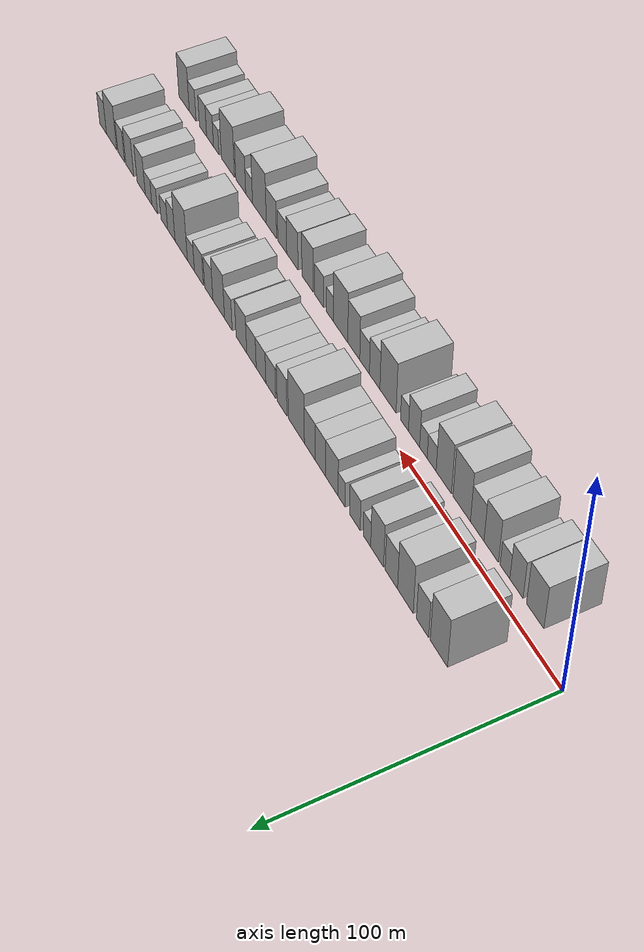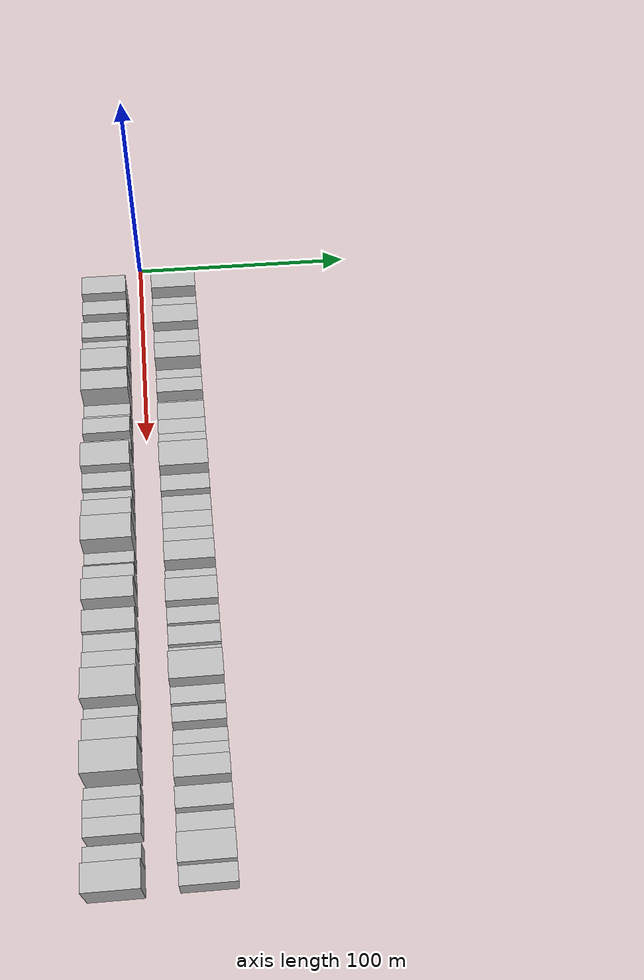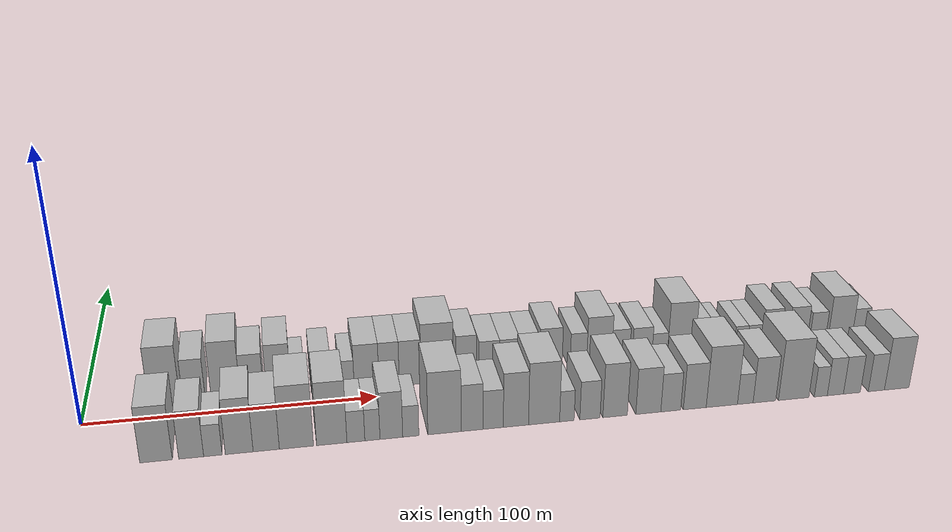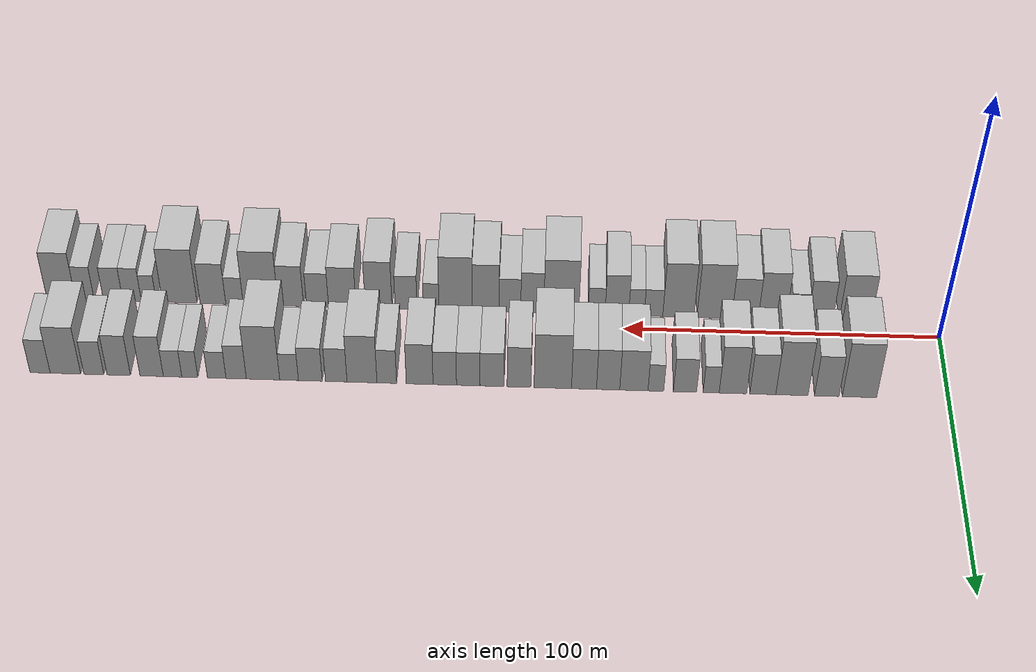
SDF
<sdf version="1.6">
 <world name="default">
  <scene>
   <sky><clouds><speed>12</speed></clouds></sky>
   <ambient>0.4 0.4 0.4 1</ambient>
   <background>0.7 0.7 0.7 1</background>
   <shadows>1</shadows>
  </scene>
  <gravity>0 0 -9.8066</gravity>
  <magnetic_field>6e-06 2.3e-05 -4.2e-05</magnetic_field>
  <physics default="0" name="default_physics" type="ode">
   <ode>
    <solver>
     <type>quick</type>
     <iters>10</iters>
     <sor>1.0</sor>
     <use_dynamic_moi_rescaling>0</use_dynamic_moi_rescaling>
    </solver>
    <constraints>
     <cfm>0</cfm>
     <erp>0.2</erp>
     <contact_max_correcting_vel>100</contact_max_correcting_vel>
     <contact_surface_layer>0.001</contact_surface_layer>
    </constraints>
   </ode>
   <max_step_size>0.004</max_step_size>
   <real_time_factor>1</real_time_factor>
   <real_time_update_rate>250</real_time_update_rate>
  </physics>
  <light name="sun" type="directional">
   <pose>0 0 10 0 0 0</pose>
   <diffuse>0.8 0.8 0.8 1</diffuse>
   <specular>0.2 0.2 0.2 1</specular>
   <attenuation>
    <range>1000</range>
    <constant>0.9</constant>
    <linear>0.01</linear>
    <quadratic>0.001</quadratic>
   </attenuation>
   <direction>-0.5 0.1 -0.9</direction>
  </light>
  <model name="building_1">
   <static>1</static>
   <pose>27.2932 16.0000 0 0.000000 0.000000 1.570796</pose>
   <link name="link">
    <pose>0 0 12.00 0 0 0</pose>
    <collision name="collision"><geometry><box><size>20.0000 10.5864 24.0000</size></box></geometry></collision>
    <visual name="visual">
     <cast_shadows>0</cast_shadows>
     <geometry><box><size>20.0000 10.5864 24.0000</size></box></geometry>
     <material>
      <script>
       <uri>model://HANNAS_wall/materials/scripts</uri>
       <uri>model://HANNAS_wall/materials/textures</uri>
       <name>vrc/HANNAS_wall</name>
      </script>
     </material>
    </visual>
   </link>
  </model>
  <model name="building_2">
   <static>1</static>
   <pose>37.3709 16.0000 0 0.000000 0.000000 1.570796</pose>
   <link name="link">
    <pose>0 0 9.00 0 0 0</pose>
    <collision name="collision"><geometry><box><size>20.0000 7.5691 18.0000</size></box></geometry></collision>
    <visual name="visual">
     <cast_shadows>0</cast_shadows>
     <geometry><box><size>20.0000 7.5691 18.0000</size></box></geometry>
     <material>
      <script>
       <uri>model://HANNAS_wall/materials/scripts</uri>
       <uri>model://HANNAS_wall/materials/textures</uri>
       <name>vrc/HANNAS_wall</name>
      </script>
     </material>
    </visual>
   </link>
  </model>
  <model name="building_3">
   <static>1</static>
   <pose>48.1267 16.0000 0 0.000000 0.000000 1.570796</pose>
   <link name="link">
    <pose>0 0 12.00 0 0 0</pose>
    <collision name="collision"><geometry><box><size>20.0000 9.9425 24.0000</size></box></geometry></collision>
    <visual name="visual">
     <cast_shadows>0</cast_shadows>
     <geometry><box><size>20.0000 9.9425 24.0000</size></box></geometry>
     <material>
      <script>
       <uri>model://HANNAS_wall/materials/scripts</uri>
       <uri>model://HANNAS_wall/materials/textures</uri>
       <name>vrc/HANNAS_wall</name>
      </script>
     </material>
    </visual>
   </link>
  </model>
  <model name="building_4">
   <static>1</static>
   <pose>57.1038 16.0000 0 0.000000 0.000000 1.570796</pose>
   <link name="link">
    <pose>0 0 9.00 0 0 0</pose>
    <collision name="collision"><geometry><box><size>20.0000 8.0115 18.0000</size></box></geometry></collision>
    <visual name="visual">
     <cast_shadows>0</cast_shadows>
     <geometry><box><size>20.0000 8.0115 18.0000</size></box></geometry>
     <material>
      <script>
       <uri>model://HANNAS_wall/materials/scripts</uri>
       <uri>model://HANNAS_wall/materials/textures</uri>
       <name>vrc/HANNAS_wall</name>
      </script>
     </material>
    </visual>
   </link>
  </model>
  <model name="building_5">
   <static>1</static>
   <pose>66.3488 16.0000 0 0.000000 0.000000 1.570796</pose>
   <link name="link">
    <pose>0 0 10.50 0 0 0</pose>
    <collision name="collision"><geometry><box><size>20.0000 8.4785 21.0000</size></box></geometry></collision>
    <visual name="visual">
     <cast_shadows>0</cast_shadows>
     <geometry><box><size>20.0000 8.4785 21.0000</size></box></geometry>
     <material>
      <script>
       <uri>model://HANNAS_wall/materials/scripts</uri>
       <uri>model://HANNAS_wall/materials/textures</uri>
       <name>vrc/HANNAS_wall</name>
      </script>
     </material>
    </visual>
   </link>
  </model>
  <model name="building_6">
   <static>1</static>
   <pose>73.0693 16.0000 0 0.000000 0.000000 1.570796</pose>
   <link name="link">
    <pose>0 0 6.00 0 0 0</pose>
    <collision name="collision"><geometry><box><size>20.0000 4.9626 12.0000</size></box></geometry></collision>
    <visual name="visual">
     <cast_shadows>0</cast_shadows>
     <geometry><box><size>20.0000 4.9626 12.0000</size></box></geometry>
     <material>
      <script>
       <uri>model://HANNAS_wall/materials/scripts</uri>
       <uri>model://HANNAS_wall/materials/textures</uri>
       <name>vrc/HANNAS_wall</name>
      </script>
     </material>
    </visual>
   </link>
  </model>
  <model name="building_7">
   <static>1</static>
   <pose>81.1387 16.0000 0 0.000000 0.000000 1.570796</pose>
   <link name="link">
    <pose>0 0 7.50 0 0 0</pose>
    <collision name="collision"><geometry><box><size>20.0000 7.1761 15.0000</size></box></geometry></collision>
    <visual name="visual">
     <cast_shadows>0</cast_shadows>
     <geometry><box><size>20.0000 7.1761 15.0000</size></box></geometry>
     <material>
      <script>
       <uri>model://HANNAS_wall/materials/scripts</uri>
       <uri>model://HANNAS_wall/materials/textures</uri>
       <name>vrc/HANNAS_wall</name>
      </script>
     </material>
    </visual>
   </link>
  </model>
  <model name="building_8">
   <static>1</static>
   <pose>90.1643 16.0000 0 0.000000 0.000000 1.570796</pose>
   <link name="link">
    <pose>0 0 6.00 0 0 0</pose>
    <collision name="collision"><geometry><box><size>20.0000 4.8752 12.0000</size></box></geometry></collision>
    <visual name="visual">
     <cast_shadows>0</cast_shadows>
     <geometry><box><size>20.0000 4.8752 12.0000</size></box></geometry>
     <material>
      <script>
       <uri>model://HANNAS_wall/materials/scripts</uri>
       <uri>model://HANNAS_wall/materials/textures</uri>
       <name>vrc/HANNAS_wall</name>
      </script>
     </material>
    </visual>
   </link>
  </model>
  <model name="building_9">
   <static>1</static>
   <pose>96.9765 16.0000 0 0.000000 0.000000 1.570796</pose>
   <link name="link">
    <pose>0 0 9.00 0 0 0</pose>
    <collision name="collision"><geometry><box><size>20.0000 8.7492 18.0000</size></box></geometry></collision>
    <visual name="visual">
     <cast_shadows>0</cast_shadows>
     <geometry><box><size>20.0000 8.7492 18.0000</size></box></geometry>
     <material>
      <script>
       <uri>model://HANNAS_wall/materials/scripts</uri>
       <uri>model://HANNAS_wall/materials/textures</uri>
       <name>vrc/HANNAS_wall</name>
      </script>
     </material>
    </visual>
   </link>
  </model>
  <model name="building_10">
   <static>1</static>
   <pose>104.9557 16.0000 0 0.000000 0.000000 1.570796</pose>
   <link name="link">
    <pose>0 0 9.00 0 0 0</pose>
    <collision name="collision"><geometry><box><size>20.0000 7.2093 18.0000</size></box></geometry></collision>
    <visual name="visual">
     <cast_shadows>0</cast_shadows>
     <geometry><box><size>20.0000 7.2093 18.0000</size></box></geometry>
     <material>
      <script>
       <uri>model://HANNAS_wall/materials/scripts</uri>
       <uri>model://HANNAS_wall/materials/textures</uri>
       <name>vrc/HANNAS_wall</name>
      </script>
     </material>
    </visual>
   </link>
  </model>
  <model name="building_11">
   <static>1</static>
   <pose>112.4397 16.0000 0 0.000000 0.000000 1.570796</pose>
   <link name="link">
    <pose>0 0 9.00 0 0 0</pose>
    <collision name="collision"><geometry><box><size>20.0000 7.7585 18.0000</size></box></geometry></collision>
    <visual name="visual">
     <cast_shadows>0</cast_shadows>
     <geometry><box><size>20.0000 7.7585 18.0000</size></box></geometry>
     <material>
      <script>
       <uri>model://HANNAS_wall/materials/scripts</uri>
       <uri>model://HANNAS_wall/materials/textures</uri>
       <name>vrc/HANNAS_wall</name>
      </script>
     </material>
    </visual>
   </link>
  </model>
  <model name="building_12">
   <static>1</static>
   <pose>122.1237 16.0000 0 0.000000 0.000000 1.570796</pose>
   <link name="link">
    <pose>0 0 12.00 0 0 0</pose>
    <collision name="collision"><geometry><box><size>20.0000 11.6096 24.0000</size></box></geometry></collision>
    <visual name="visual">
     <cast_shadows>0</cast_shadows>
     <geometry><box><size>20.0000 11.6096 24.0000</size></box></geometry>
     <material>
      <script>
       <uri>model://HANNAS_wall/materials/scripts</uri>
       <uri>model://HANNAS_wall/materials/textures</uri>
       <name>vrc/HANNAS_wall</name>
      </script>
     </material>
    </visual>
   </link>
  </model>
  <model name="building_13">
   <static>1</static>
   <pose>132.6092 16.0000 0 0.000000 0.000000 1.570796</pose>
   <link name="link">
    <pose>0 0 9.00 0 0 0</pose>
    <collision name="collision"><geometry><box><size>20.0000 7.3614 18.0000</size></box></geometry></collision>
    <visual name="visual">
     <cast_shadows>0</cast_shadows>
     <geometry><box><size>20.0000 7.3614 18.0000</size></box></geometry>
     <material>
      <script>
       <uri>model://HANNAS_wall/materials/scripts</uri>
       <uri>model://HANNAS_wall/materials/textures</uri>
       <name>vrc/HANNAS_wall</name>
      </script>
     </material>
    </visual>
   </link>
  </model>
  <model name="building_14">
   <static>1</static>
   <pose>140.9955 16.0000 0 0.000000 0.000000 1.570796</pose>
   <link name="link">
    <pose>0 0 7.50 0 0 0</pose>
    <collision name="collision"><geometry><box><size>20.0000 7.4113 15.0000</size></box></geometry></collision>
    <visual name="visual">
     <cast_shadows>0</cast_shadows>
     <geometry><box><size>20.0000 7.4113 15.0000</size></box></geometry>
     <material>
      <script>
       <uri>model://HANNAS_wall/materials/scripts</uri>
       <uri>model://HANNAS_wall/materials/textures</uri>
       <name>vrc/HANNAS_wall</name>
      </script>
     </material>
    </visual>
   </link>
  </model>
  <model name="building_15">
   <static>1</static>
   <pose>148.3670 16.0000 0 0.000000 0.000000 1.570796</pose>
   <link name="link">
    <pose>0 0 7.50 0 0 0</pose>
    <collision name="collision"><geometry><box><size>20.0000 7.3316 15.0000</size></box></geometry></collision>
    <visual name="visual">
     <cast_shadows>0</cast_shadows>
     <geometry><box><size>20.0000 7.3316 15.0000</size></box></geometry>
     <material>
      <script>
       <uri>model://HANNAS_wall/materials/scripts</uri>
       <uri>model://HANNAS_wall/materials/textures</uri>
       <name>vrc/HANNAS_wall</name>
      </script>
     </material>
    </visual>
   </link>
  </model>
  <model name="building_16">
   <static>1</static>
   <pose>155.6822 16.0000 0 0.000000 0.000000 1.570796</pose>
   <link name="link">
    <pose>0 0 7.50 0 0 0</pose>
    <collision name="collision"><geometry><box><size>20.0000 7.2989 15.0000</size></box></geometry></collision>
    <visual name="visual">
     <cast_shadows>0</cast_shadows>
     <geometry><box><size>20.0000 7.2989 15.0000</size></box></geometry>
     <material>
      <script>
       <uri>model://HANNAS_wall/materials/scripts</uri>
       <uri>model://HANNAS_wall/materials/textures</uri>
       <name>vrc/HANNAS_wall</name>
      </script>
     </material>
    </visual>
   </link>
  </model>
  <model name="building_17">
   <static>1</static>
   <pose>163.4981 16.0000 0 0.000000 0.000000 1.570796</pose>
   <link name="link">
    <pose>0 0 9.00 0 0 0</pose>
    <collision name="collision"><geometry><box><size>20.0000 8.3329 18.0000</size></box></geometry></collision>
    <visual name="visual">
     <cast_shadows>0</cast_shadows>
     <geometry><box><size>20.0000 8.3329 18.0000</size></box></geometry>
     <material>
      <script>
       <uri>model://HANNAS_wall/materials/scripts</uri>
       <uri>model://HANNAS_wall/materials/textures</uri>
       <name>vrc/HANNAS_wall</name>
      </script>
     </material>
    </visual>
   </link>
  </model>
  <model name="building_18">
   <static>1</static>
   <pose>173.7253 16.0000 0 0.000000 0.000000 1.570796</pose>
   <link name="link">
    <pose>0 0 7.50 0 0 0</pose>
    <collision name="collision"><geometry><box><size>20.0000 6.1214 15.0000</size></box></geometry></collision>
    <visual name="visual">
     <cast_shadows>0</cast_shadows>
     <geometry><box><size>20.0000 6.1214 15.0000</size></box></geometry>
     <material>
      <script>
       <uri>model://HANNAS_wall/materials/scripts</uri>
       <uri>model://HANNAS_wall/materials/textures</uri>
       <name>vrc/HANNAS_wall</name>
      </script>
     </material>
    </visual>
   </link>
  </model>
  <model name="building_19">
   <static>1</static>
   <pose>181.4577 16.0000 0 0.000000 0.000000 1.570796</pose>
   <link name="link">
    <pose>0 0 10.50 0 0 0</pose>
    <collision name="collision"><geometry><box><size>20.0000 9.3434 21.0000</size></box></geometry></collision>
    <visual name="visual">
     <cast_shadows>0</cast_shadows>
     <geometry><box><size>20.0000 9.3434 21.0000</size></box></geometry>
     <material>
      <script>
       <uri>model://HANNAS_wall/materials/scripts</uri>
       <uri>model://HANNAS_wall/materials/textures</uri>
       <name>vrc/HANNAS_wall</name>
      </script>
     </material>
    </visual>
   </link>
  </model>
  <model name="building_20">
   <static>1</static>
   <pose>189.4932 16.0000 0 0.000000 0.000000 1.570796</pose>
   <link name="link">
    <pose>0 0 7.50 0 0 0</pose>
    <collision name="collision"><geometry><box><size>20.0000 6.7278 15.0000</size></box></geometry></collision>
    <visual name="visual">
     <cast_shadows>0</cast_shadows>
     <geometry><box><size>20.0000 6.7278 15.0000</size></box></geometry>
     <material>
      <script>
       <uri>model://HANNAS_wall/materials/scripts</uri>
       <uri>model://HANNAS_wall/materials/textures</uri>
       <name>vrc/HANNAS_wall</name>
      </script>
     </material>
    </visual>
   </link>
  </model>
  <model name="building_21">
   <static>1</static>
   <pose>197.5822 16.0000 0 0.000000 0.000000 1.570796</pose>
   <link name="link">
    <pose>0 0 7.50 0 0 0</pose>
    <collision name="collision"><geometry><box><size>20.0000 7.4502 15.0000</size></box></geometry></collision>
    <visual name="visual">
     <cast_shadows>0</cast_shadows>
     <geometry><box><size>20.0000 7.4502 15.0000</size></box></geometry>
     <material>
      <script>
       <uri>model://HANNAS_wall/materials/scripts</uri>
       <uri>model://HANNAS_wall/materials/textures</uri>
       <name>vrc/HANNAS_wall</name>
      </script>
     </material>
    </visual>
   </link>
  </model>
  <model name="building_22">
   <static>1</static>
   <pose>204.2305 16.0000 0 0.000000 0.000000 1.570796</pose>
   <link name="link">
    <pose>0 0 6.00 0 0 0</pose>
    <collision name="collision"><geometry><box><size>20.0000 5.8465 12.0000</size></box></geometry></collision>
    <visual name="visual">
     <cast_shadows>0</cast_shadows>
     <geometry><box><size>20.0000 5.8465 12.0000</size></box></geometry>
     <material>
      <script>
       <uri>model://HANNAS_wall/materials/scripts</uri>
       <uri>model://HANNAS_wall/materials/textures</uri>
       <name>vrc/HANNAS_wall</name>
      </script>
     </material>
    </visual>
   </link>
  </model>
  <model name="building_23">
   <static>1</static>
   <pose>212.3700 16.0000 0 0.000000 0.000000 1.570796</pose>
   <link name="link">
    <pose>0 0 12.00 0 0 0</pose>
    <collision name="collision"><geometry><box><size>20.0000 10.4324 24.0000</size></box></geometry></collision>
    <visual name="visual">
     <cast_shadows>0</cast_shadows>
     <geometry><box><size>20.0000 10.4324 24.0000</size></box></geometry>
     <material>
      <script>
       <uri>model://HANNAS_wall/materials/scripts</uri>
       <uri>model://HANNAS_wall/materials/textures</uri>
       <name>vrc/HANNAS_wall</name>
      </script>
     </material>
    </visual>
   </link>
  </model>
  <model name="building_24">
   <static>1</static>
   <pose>220.7596 16.0000 0 0.000000 0.000000 1.570796</pose>
   <link name="link">
    <pose>0 0 7.50 0 0 0</pose>
    <collision name="collision"><geometry><box><size>20.0000 6.3466 15.0000</size></box></geometry></collision>
    <visual name="visual">
     <cast_shadows>0</cast_shadows>
     <geometry><box><size>20.0000 6.3466 15.0000</size></box></geometry>
     <material>
      <script>
       <uri>model://HANNAS_wall/materials/scripts</uri>
       <uri>model://HANNAS_wall/materials/textures</uri>
       <name>vrc/HANNAS_wall</name>
      </script>
     </material>
    </visual>
   </link>
  </model>
  <model name="building_25">
   <static>1</static>
   <pose>226.8524 16.0000 0 0.000000 0.000000 1.570796</pose>
   <link name="link">
    <pose>0 0 6.00 0 0 0</pose>
    <collision name="collision"><geometry><box><size>20.0000 5.8391 12.0000</size></box></geometry></collision>
    <visual name="visual">
     <cast_shadows>0</cast_shadows>
     <geometry><box><size>20.0000 5.8391 12.0000</size></box></geometry>
     <material>
      <script>
       <uri>model://HANNAS_wall/materials/scripts</uri>
       <uri>model://HANNAS_wall/materials/textures</uri>
       <name>vrc/HANNAS_wall</name>
      </script>
     </material>
    </visual>
   </link>
  </model>
  <model name="building_26">
   <static>1</static>
   <pose>235.2844 16.0000 0 0.000000 0.000000 1.570796</pose>
   <link name="link">
    <pose>0 0 6.00 0 0 0</pose>
    <collision name="collision"><geometry><box><size>20.0000 5.0248 12.0000</size></box></geometry></collision>
    <visual name="visual">
     <cast_shadows>0</cast_shadows>
     <geometry><box><size>20.0000 5.0248 12.0000</size></box></geometry>
     <material>
      <script>
       <uri>model://HANNAS_wall/materials/scripts</uri>
       <uri>model://HANNAS_wall/materials/textures</uri>
       <name>vrc/HANNAS_wall</name>
      </script>
     </material>
    </visual>
   </link>
  </model>
  <model name="building_27">
   <static>1</static>
   <pose>240.6908 16.0000 0 0.000000 0.000000 1.570796</pose>
   <link name="link">
    <pose>0 0 6.00 0 0 0</pose>
    <collision name="collision"><geometry><box><size>20.0000 5.7879 12.0000</size></box></geometry></collision>
    <visual name="visual">
     <cast_shadows>0</cast_shadows>
     <geometry><box><size>20.0000 5.7879 12.0000</size></box></geometry>
     <material>
      <script>
       <uri>model://HANNAS_wall/materials/scripts</uri>
       <uri>model://HANNAS_wall/materials/textures</uri>
       <name>vrc/HANNAS_wall</name>
      </script>
     </material>
    </visual>
   </link>
  </model>
  <model name="building_28">
   <static>1</static>
   <pose>247.2457 16.0000 0 0.000000 0.000000 1.570796</pose>
   <link name="link">
    <pose>0 0 9.00 0 0 0</pose>
    <collision name="collision"><geometry><box><size>20.0000 7.3219 18.0000</size></box></geometry></collision>
    <visual name="visual">
     <cast_shadows>0</cast_shadows>
     <geometry><box><size>20.0000 7.3219 18.0000</size></box></geometry>
     <material>
      <script>
       <uri>model://HANNAS_wall/materials/scripts</uri>
       <uri>model://HANNAS_wall/materials/textures</uri>
       <name>vrc/HANNAS_wall</name>
      </script>
     </material>
    </visual>
   </link>
  </model>
  <model name="building_29">
   <static>1</static>
   <pose>257.5737 16.0000 0 0.000000 0.000000 1.570796</pose>
   <link name="link">
    <pose>0 0 9.00 0 0 0</pose>
    <collision name="collision"><geometry><box><size>20.0000 7.3342 18.0000</size></box></geometry></collision>
    <visual name="visual">
     <cast_shadows>0</cast_shadows>
     <geometry><box><size>20.0000 7.3342 18.0000</size></box></geometry>
     <material>
      <script>
       <uri>model://HANNAS_wall/materials/scripts</uri>
       <uri>model://HANNAS_wall/materials/textures</uri>
       <name>vrc/HANNAS_wall</name>
      </script>
     </material>
    </visual>
   </link>
  </model>
  <model name="building_30">
   <static>1</static>
   <pose>265.3771 16.0000 0 0.000000 0.000000 1.570796</pose>
   <link name="link">
    <pose>0 0 7.50 0 0 0</pose>
    <collision name="collision"><geometry><box><size>20.0000 6.2727 15.0000</size></box></geometry></collision>
    <visual name="visual">
     <cast_shadows>0</cast_shadows>
     <geometry><box><size>20.0000 6.2727 15.0000</size></box></geometry>
     <material>
      <script>
       <uri>model://HANNAS_wall/materials/scripts</uri>
       <uri>model://HANNAS_wall/materials/textures</uri>
       <name>vrc/HANNAS_wall</name>
      </script>
     </material>
    </visual>
   </link>
  </model>
  <model name="building_31">
   <static>1</static>
   <pose>274.3056 16.0000 0 0.000000 0.000000 1.570796</pose>
   <link name="link">
    <pose>0 0 10.50 0 0 0</pose>
    <collision name="collision"><geometry><box><size>20.0000 9.5843 21.0000</size></box></geometry></collision>
    <visual name="visual">
     <cast_shadows>0</cast_shadows>
     <geometry><box><size>20.0000 9.5843 21.0000</size></box></geometry>
     <material>
      <script>
       <uri>model://HANNAS_wall/materials/scripts</uri>
       <uri>model://HANNAS_wall/materials/textures</uri>
       <name>vrc/HANNAS_wall</name>
      </script>
     </material>
    </visual>
   </link>
  </model>
  <model name="building_32">
   <static>1</static>
   <pose>282.2590 16.0000 0 0.000000 0.000000 1.570796</pose>
   <link name="link">
    <pose>0 0 7.50 0 0 0</pose>
    <collision name="collision"><geometry><box><size>20.0000 6.3225 15.0000</size></box></geometry></collision>
    <visual name="visual">
     <cast_shadows>0</cast_shadows>
     <geometry><box><size>20.0000 6.3225 15.0000</size></box></geometry>
     <material>
      <script>
       <uri>model://HANNAS_wall/materials/scripts</uri>
       <uri>model://HANNAS_wall/materials/textures</uri>
       <name>vrc/HANNAS_wall</name>
      </script>
     </material>
    </visual>
   </link>
  </model>
  <model name="building_33">
   <static>1</static>
   <pose>26.1225 -16.0000 0 0.000000 0.000000 1.570796</pose>
   <link name="link">
    <pose>0 0 10.50 0 0 0</pose>
    <collision name="collision"><geometry><box><size>20.0000 10.2451 21.0000</size></box></geometry></collision>
    <visual name="visual">
     <cast_shadows>0</cast_shadows>
     <geometry><box><size>20.0000 10.2451 21.0000</size></box></geometry>
     <material>
      <script>
       <uri>model://HANNAS_wall/materials/scripts</uri>
       <uri>model://HANNAS_wall/materials/textures</uri>
       <name>vrc/HANNAS_wall</name>
      </script>
     </material>
    </visual>
   </link>
  </model>
  <model name="building_34">
   <static>1</static>
   <pose>37.2022 -16.0000 0 0.000000 0.000000 1.570796</pose>
   <link name="link">
    <pose>0 0 9.00 0 0 0</pose>
    <collision name="collision"><geometry><box><size>20.0000 7.9142 18.0000</size></box></geometry></collision>
    <visual name="visual">
     <cast_shadows>0</cast_shadows>
     <geometry><box><size>20.0000 7.9142 18.0000</size></box></geometry>
     <material>
      <script>
       <uri>model://HANNAS_wall/materials/scripts</uri>
       <uri>model://HANNAS_wall/materials/textures</uri>
       <name>vrc/HANNAS_wall</name>
      </script>
     </material>
    </visual>
   </link>
  </model>
  <model name="building_35">
   <static>1</static>
   <pose>44.0995 -16.0000 0 0.000000 0.000000 1.570796</pose>
   <link name="link">
    <pose>0 0 6.00 0 0 0</pose>
    <collision name="collision"><geometry><box><size>20.0000 5.8806 12.0000</size></box></geometry></collision>
    <visual name="visual">
     <cast_shadows>0</cast_shadows>
     <geometry><box><size>20.0000 5.8806 12.0000</size></box></geometry>
     <material>
      <script>
       <uri>model://HANNAS_wall/materials/scripts</uri>
       <uri>model://HANNAS_wall/materials/textures</uri>
       <name>vrc/HANNAS_wall</name>
      </script>
     </material>
    </visual>
   </link>
  </model>
  <model name="building_36">
   <static>1</static>
   <pose>52.5034 -16.0000 0 0.000000 0.000000 1.570796</pose>
   <link name="link">
    <pose>0 0 10.50 0 0 0</pose>
    <collision name="collision"><geometry><box><size>20.0000 8.9273 21.0000</size></box></geometry></collision>
    <visual name="visual">
     <cast_shadows>0</cast_shadows>
     <geometry><box><size>20.0000 8.9273 21.0000</size></box></geometry>
     <material>
      <script>
       <uri>model://HANNAS_wall/materials/scripts</uri>
       <uri>model://HANNAS_wall/materials/textures</uri>
       <name>vrc/HANNAS_wall</name>
      </script>
     </material>
    </visual>
   </link>
  </model>
  <model name="building_37">
   <static>1</static>
   <pose>61.1999 -16.0000 0 0.000000 0.000000 1.570796</pose>
   <link name="link">
    <pose>0 0 9.00 0 0 0</pose>
    <collision name="collision"><geometry><box><size>20.0000 8.4656 18.0000</size></box></geometry></collision>
    <visual name="visual">
     <cast_shadows>0</cast_shadows>
     <geometry><box><size>20.0000 8.4656 18.0000</size></box></geometry>
     <material>
      <script>
       <uri>model://HANNAS_wall/materials/scripts</uri>
       <uri>model://HANNAS_wall/materials/textures</uri>
       <name>vrc/HANNAS_wall</name>
      </script>
     </material>
    </visual>
   </link>
  </model>
  <model name="building_38">
   <static>1</static>
   <pose>70.9779 -16.0000 0 0.000000 0.000000 1.570796</pose>
   <link name="link">
    <pose>0 0 12.00 0 0 0</pose>
    <collision name="collision"><geometry><box><size>20.0000 11.0904 24.0000</size></box></geometry></collision>
    <visual name="visual">
     <cast_shadows>0</cast_shadows>
     <geometry><box><size>20.0000 11.0904 24.0000</size></box></geometry>
     <material>
      <script>
       <uri>model://HANNAS_wall/materials/scripts</uri>
       <uri>model://HANNAS_wall/materials/textures</uri>
       <name>vrc/HANNAS_wall</name>
      </script>
     </material>
    </visual>
   </link>
  </model>
  <model name="building_39">
   <static>1</static>
   <pose>82.4978 -16.0000 0 0.000000 0.000000 1.570796</pose>
   <link name="link">
    <pose>0 0 12.00 0 0 0</pose>
    <collision name="collision"><geometry><box><size>20.0000 9.9492 24.0000</size></box></geometry></collision>
    <visual name="visual">
     <cast_shadows>0</cast_shadows>
     <geometry><box><size>20.0000 9.9492 24.0000</size></box></geometry>
     <material>
      <script>
       <uri>model://HANNAS_wall/materials/scripts</uri>
       <uri>model://HANNAS_wall/materials/textures</uri>
       <name>vrc/HANNAS_wall</name>
      </script>
     </material>
    </visual>
   </link>
  </model>
  <model name="building_40">
   <static>1</static>
   <pose>90.4262 -16.0000 0 0.000000 0.000000 1.570796</pose>
   <link name="link">
    <pose>0 0 6.00 0 0 0</pose>
    <collision name="collision"><geometry><box><size>20.0000 5.9077 12.0000</size></box></geometry></collision>
    <visual name="visual">
     <cast_shadows>0</cast_shadows>
     <geometry><box><size>20.0000 5.9077 12.0000</size></box></geometry>
     <material>
      <script>
       <uri>model://HANNAS_wall/materials/scripts</uri>
       <uri>model://HANNAS_wall/materials/textures</uri>
       <name>vrc/HANNAS_wall</name>
      </script>
     </material>
    </visual>
   </link>
  </model>
  <model name="building_41">
   <static>1</static>
   <pose>95.8811 -16.0000 0 0.000000 0.000000 1.570796</pose>
   <link name="link">
    <pose>0 0 6.00 0 0 0</pose>
    <collision name="collision"><geometry><box><size>20.0000 5.0021 12.0000</size></box></geometry></collision>
    <visual name="visual">
     <cast_shadows>0</cast_shadows>
     <geometry><box><size>20.0000 5.0021 12.0000</size></box></geometry>
     <material>
      <script>
       <uri>model://HANNAS_wall/materials/scripts</uri>
       <uri>model://HANNAS_wall/materials/textures</uri>
       <name>vrc/HANNAS_wall</name>
      </script>
     </material>
    </visual>
   </link>
  </model>
  <model name="building_42">
   <static>1</static>
   <pose>102.1635 -16.0000 0 0.000000 0.000000 1.570796</pose>
   <link name="link">
    <pose>0 0 9.00 0 0 0</pose>
    <collision name="collision"><geometry><box><size>20.0000 7.5627 18.0000</size></box></geometry></collision>
    <visual name="visual">
     <cast_shadows>0</cast_shadows>
     <geometry><box><size>20.0000 7.5627 18.0000</size></box></geometry>
     <material>
      <script>
       <uri>model://HANNAS_wall/materials/scripts</uri>
       <uri>model://HANNAS_wall/materials/textures</uri>
       <name>vrc/HANNAS_wall</name>
      </script>
     </material>
    </visual>
   </link>
  </model>
  <model name="building_43">
   <static>1</static>
   <pose>108.6462 -16.0000 0 0.000000 0.000000 1.570796</pose>
   <link name="link">
    <pose>0 0 6.00 0 0 0</pose>
    <collision name="collision"><geometry><box><size>20.0000 5.4026 12.0000</size></box></geometry></collision>
    <visual name="visual">
     <cast_shadows>0</cast_shadows>
     <geometry><box><size>20.0000 5.4026 12.0000</size></box></geometry>
     <material>
      <script>
       <uri>model://HANNAS_wall/materials/scripts</uri>
       <uri>model://HANNAS_wall/materials/textures</uri>
       <name>vrc/HANNAS_wall</name>
      </script>
     </material>
    </visual>
   </link>
  </model>
  <model name="building_44">
   <static>1</static>
   <pose>119.9620 -16.0000 0 0.000000 0.000000 1.570796</pose>
   <link name="link">
    <pose>0 0 12.00 0 0 0</pose>
    <collision name="collision"><geometry><box><size>20.0000 11.2290 24.0000</size></box></geometry></collision>
    <visual name="visual">
     <cast_shadows>0</cast_shadows>
     <geometry><box><size>20.0000 11.2290 24.0000</size></box></geometry>
     <material>
      <script>
       <uri>model://HANNAS_wall/materials/scripts</uri>
       <uri>model://HANNAS_wall/materials/textures</uri>
       <name>vrc/HANNAS_wall</name>
      </script>
     </material>
    </visual>
   </link>
  </model>
  <model name="building_45">
   <static>1</static>
   <pose>129.2773 -16.0000 0 0.000000 0.000000 1.570796</pose>
   <link name="link">
    <pose>0 0 9.00 0 0 0</pose>
    <collision name="collision"><geometry><box><size>20.0000 7.4016 18.0000</size></box></geometry></collision>
    <visual name="visual">
     <cast_shadows>0</cast_shadows>
     <geometry><box><size>20.0000 7.4016 18.0000</size></box></geometry>
     <material>
      <script>
       <uri>model://HANNAS_wall/materials/scripts</uri>
       <uri>model://HANNAS_wall/materials/textures</uri>
       <name>vrc/HANNAS_wall</name>
      </script>
     </material>
    </visual>
   </link>
  </model>
  <model name="building_46">
   <static>1</static>
   <pose>136.4306 -16.0000 0 0.000000 0.000000 1.570796</pose>
   <link name="link">
    <pose>0 0 7.50 0 0 0</pose>
    <collision name="collision"><geometry><box><size>20.0000 6.9052 15.0000</size></box></geometry></collision>
    <visual name="visual">
     <cast_shadows>0</cast_shadows>
     <geometry><box><size>20.0000 6.9052 15.0000</size></box></geometry>
     <material>
      <script>
       <uri>model://HANNAS_wall/materials/scripts</uri>
       <uri>model://HANNAS_wall/materials/textures</uri>
       <name>vrc/HANNAS_wall</name>
      </script>
     </material>
    </visual>
   </link>
  </model>
  <model name="building_47">
   <static>1</static>
   <pose>144.2147 -16.0000 0 0.000000 0.000000 1.570796</pose>
   <link name="link">
    <pose>0 0 10.50 0 0 0</pose>
    <collision name="collision"><geometry><box><size>20.0000 8.6629 21.0000</size></box></geometry></collision>
    <visual name="visual">
     <cast_shadows>0</cast_shadows>
     <geometry><box><size>20.0000 8.6629 21.0000</size></box></geometry>
     <material>
      <script>
       <uri>model://HANNAS_wall/materials/scripts</uri>
       <uri>model://HANNAS_wall/materials/textures</uri>
       <name>vrc/HANNAS_wall</name>
      </script>
     </material>
    </visual>
   </link>
  </model>
  <model name="building_48">
   <static>1</static>
   <pose>153.9124 -16.0000 0 0.000000 0.000000 1.570796</pose>
   <link name="link">
    <pose>0 0 12.00 0 0 0</pose>
    <collision name="collision"><geometry><box><size>20.0000 10.7325 24.0000</size></box></geometry></collision>
    <visual name="visual">
     <cast_shadows>0</cast_shadows>
     <geometry><box><size>20.0000 10.7325 24.0000</size></box></geometry>
     <material>
      <script>
       <uri>model://HANNAS_wall/materials/scripts</uri>
       <uri>model://HANNAS_wall/materials/textures</uri>
       <name>vrc/HANNAS_wall</name>
      </script>
     </material>
    </visual>
   </link>
  </model>
  <model name="building_49">
   <static>1</static>
   <pose>161.7988 -16.0000 0 0.000000 0.000000 1.570796</pose>
   <link name="link">
    <pose>0 0 6.00 0 0 0</pose>
    <collision name="collision"><geometry><box><size>20.0000 5.0403 12.0000</size></box></geometry></collision>
    <visual name="visual">
     <cast_shadows>0</cast_shadows>
     <geometry><box><size>20.0000 5.0403 12.0000</size></box></geometry>
     <material>
      <script>
       <uri>model://HANNAS_wall/materials/scripts</uri>
       <uri>model://HANNAS_wall/materials/textures</uri>
       <name>vrc/HANNAS_wall</name>
      </script>
     </material>
    </visual>
   </link>
  </model>
  <model name="building_50">
   <static>1</static>
   <pose>169.8410 -16.0000 0 0.000000 0.000000 1.570796</pose>
   <link name="link">
    <pose>0 0 7.50 0 0 0</pose>
    <collision name="collision"><geometry><box><size>20.0000 7.0441 15.0000</size></box></geometry></collision>
    <visual name="visual">
     <cast_shadows>0</cast_shadows>
     <geometry><box><size>20.0000 7.0441 15.0000</size></box></geometry>
     <material>
      <script>
       <uri>model://HANNAS_wall/materials/scripts</uri>
       <uri>model://HANNAS_wall/materials/textures</uri>
       <name>vrc/HANNAS_wall</name>
      </script>
     </material>
    </visual>
   </link>
  </model>
  <model name="building_51">
   <static>1</static>
   <pose>178.6703 -16.0000 0 0.000000 0.000000 1.570796</pose>
   <link name="link">
    <pose>0 0 10.50 0 0 0</pose>
    <collision name="collision"><geometry><box><size>20.0000 8.6146 21.0000</size></box></geometry></collision>
    <visual name="visual">
     <cast_shadows>0</cast_shadows>
     <geometry><box><size>20.0000 8.6146 21.0000</size></box></geometry>
     <material>
      <script>
       <uri>model://HANNAS_wall/materials/scripts</uri>
       <uri>model://HANNAS_wall/materials/textures</uri>
       <name>vrc/HANNAS_wall</name>
      </script>
     </material>
    </visual>
   </link>
  </model>
  <model name="building_52">
   <static>1</static>
   <pose>190.4053 -16.0000 0 0.000000 0.000000 1.570796</pose>
   <link name="link">
    <pose>0 0 9.00 0 0 0</pose>
    <collision name="collision"><geometry><box><size>20.0000 8.8554 18.0000</size></box></geometry></collision>
    <visual name="visual">
     <cast_shadows>0</cast_shadows>
     <geometry><box><size>20.0000 8.8554 18.0000</size></box></geometry>
     <material>
      <script>
       <uri>model://HANNAS_wall/materials/scripts</uri>
       <uri>model://HANNAS_wall/materials/textures</uri>
       <name>vrc/HANNAS_wall</name>
      </script>
     </material>
    </visual>
   </link>
  </model>
  <model name="building_53">
   <static>1</static>
   <pose>198.3658 -16.0000 0 0.000000 0.000000 1.570796</pose>
   <link name="link">
    <pose>0 0 7.50 0 0 0</pose>
    <collision name="collision"><geometry><box><size>20.0000 7.0656 15.0000</size></box></geometry></collision>
    <visual name="visual">
     <cast_shadows>0</cast_shadows>
     <geometry><box><size>20.0000 7.0656 15.0000</size></box></geometry>
     <material>
      <script>
       <uri>model://HANNAS_wall/materials/scripts</uri>
       <uri>model://HANNAS_wall/materials/textures</uri>
       <name>vrc/HANNAS_wall</name>
      </script>
     </material>
    </visual>
   </link>
  </model>
  <model name="building_54">
   <static>1</static>
   <pose>206.9950 -16.0000 0 0.000000 0.000000 1.570796</pose>
   <link name="link">
    <pose>0 0 9.00 0 0 0</pose>
    <collision name="collision"><geometry><box><size>20.0000 8.1928 18.0000</size></box></geometry></collision>
    <visual name="visual">
     <cast_shadows>0</cast_shadows>
     <geometry><box><size>20.0000 8.1928 18.0000</size></box></geometry>
     <material>
      <script>
       <uri>model://HANNAS_wall/materials/scripts</uri>
       <uri>model://HANNAS_wall/materials/textures</uri>
       <name>vrc/HANNAS_wall</name>
      </script>
     </material>
    </visual>
   </link>
  </model>
  <model name="building_55">
   <static>1</static>
   <pose>216.7423 -16.0000 0 0.000000 0.000000 1.570796</pose>
   <link name="link">
    <pose>0 0 12.00 0 0 0</pose>
    <collision name="collision"><geometry><box><size>20.0000 11.3019 24.0000</size></box></geometry></collision>
    <visual name="visual">
     <cast_shadows>0</cast_shadows>
     <geometry><box><size>20.0000 11.3019 24.0000</size></box></geometry>
     <material>
      <script>
       <uri>model://HANNAS_wall/materials/scripts</uri>
       <uri>model://HANNAS_wall/materials/textures</uri>
       <name>vrc/HANNAS_wall</name>
      </script>
     </material>
    </visual>
   </link>
  </model>
  <model name="building_56">
   <static>1</static>
   <pose>225.2256 -16.0000 0 0.000000 0.000000 1.570796</pose>
   <link name="link">
    <pose>0 0 6.00 0 0 0</pose>
    <collision name="collision"><geometry><box><size>20.0000 5.6646 12.0000</size></box></geometry></collision>
    <visual name="visual">
     <cast_shadows>0</cast_shadows>
     <geometry><box><size>20.0000 5.6646 12.0000</size></box></geometry>
     <material>
      <script>
       <uri>model://HANNAS_wall/materials/scripts</uri>
       <uri>model://HANNAS_wall/materials/textures</uri>
       <name>vrc/HANNAS_wall</name>
      </script>
     </material>
    </visual>
   </link>
  </model>
  <model name="building_57">
   <static>1</static>
   <pose>232.2070 -16.0000 0 0.000000 0.000000 1.570796</pose>
   <link name="link">
    <pose>0 0 9.00 0 0 0</pose>
    <collision name="collision"><geometry><box><size>20.0000 8.2982 18.0000</size></box></geometry></collision>
    <visual name="visual">
     <cast_shadows>0</cast_shadows>
     <geometry><box><size>20.0000 8.2982 18.0000</size></box></geometry>
     <material>
      <script>
       <uri>model://HANNAS_wall/materials/scripts</uri>
       <uri>model://HANNAS_wall/materials/textures</uri>
       <name>vrc/HANNAS_wall</name>
      </script>
     </material>
    </visual>
   </link>
  </model>
  <model name="building_58">
   <static>1</static>
   <pose>242.9613 -16.0000 0 0.000000 0.000000 1.570796</pose>
   <link name="link">
    <pose>0 0 12.00 0 0 0</pose>
    <collision name="collision"><geometry><box><size>20.0000 11.2104 24.0000</size></box></geometry></collision>
    <visual name="visual">
     <cast_shadows>0</cast_shadows>
     <geometry><box><size>20.0000 11.2104 24.0000</size></box></geometry>
     <material>
      <script>
       <uri>model://HANNAS_wall/materials/scripts</uri>
       <uri>model://HANNAS_wall/materials/textures</uri>
       <name>vrc/HANNAS_wall</name>
      </script>
     </material>
    </visual>
   </link>
  </model>
  <model name="building_59">
   <static>1</static>
   <pose>252.9781 -16.0000 0 0.000000 0.000000 1.570796</pose>
   <link name="link">
    <pose>0 0 6.00 0 0 0</pose>
    <collision name="collision"><geometry><box><size>20.0000 4.8233 12.0000</size></box></geometry></collision>
    <visual name="visual">
     <cast_shadows>0</cast_shadows>
     <geometry><box><size>20.0000 4.8233 12.0000</size></box></geometry>
     <material>
      <script>
       <uri>model://HANNAS_wall/materials/scripts</uri>
       <uri>model://HANNAS_wall/materials/textures</uri>
       <name>vrc/HANNAS_wall</name>
      </script>
     </material>
    </visual>
   </link>
  </model>
  <model name="building_60">
   <static>1</static>
   <pose>258.3930 -16.0000 0 0.000000 0.000000 1.570796</pose>
   <link name="link">
    <pose>0 0 7.50 0 0 0</pose>
    <collision name="collision"><geometry><box><size>20.0000 6.0065 15.0000</size></box></geometry></collision>
    <visual name="visual">
     <cast_shadows>0</cast_shadows>
     <geometry><box><size>20.0000 6.0065 15.0000</size></box></geometry>
     <material>
      <script>
       <uri>model://HANNAS_wall/materials/scripts</uri>
       <uri>model://HANNAS_wall/materials/textures</uri>
       <name>vrc/HANNAS_wall</name>
      </script>
     </material>
    </visual>
   </link>
  </model>
  <model name="building_61">
   <static>1</static>
   <pose>264.5484 -16.0000 0 0.000000 0.000000 1.570796</pose>
   <link name="link">
    <pose>0 0 7.50 0 0 0</pose>
    <collision name="collision"><geometry><box><size>20.0000 6.3042 15.0000</size></box></geometry></collision>
    <visual name="visual">
     <cast_shadows>0</cast_shadows>
     <geometry><box><size>20.0000 6.3042 15.0000</size></box></geometry>
     <material>
      <script>
       <uri>model://HANNAS_wall/materials/scripts</uri>
       <uri>model://HANNAS_wall/materials/textures</uri>
       <name>vrc/HANNAS_wall</name>
      </script>
     </material>
    </visual>
   </link>
  </model>
  <model name="building_62">
   <static>1</static>
   <pose>273.7282 -16.0000 0 0.000000 0.000000 1.570796</pose>
   <link name="link">
    <pose>0 0 7.50 0 0 0</pose>
    <collision name="collision"><geometry><box><size>20.0000 6.0553 15.0000</size></box></geometry></collision>
    <visual name="visual">
     <cast_shadows>0</cast_shadows>
     <geometry><box><size>20.0000 6.0553 15.0000</size></box></geometry>
     <material>
      <script>
       <uri>model://HANNAS_wall/materials/scripts</uri>
       <uri>model://HANNAS_wall/materials/textures</uri>
       <name>vrc/HANNAS_wall</name>
      </script>
     </material>
    </visual>
   </link>
  </model>
  <model name="building_63">
   <static>1</static>
   <pose>281.4122 -16.0000 0 0.000000 0.000000 1.570796</pose>
   <link name="link">
    <pose>0 0 10.50 0 0 0</pose>
    <collision name="collision"><geometry><box><size>20.0000 9.3127 21.0000</size></box></geometry></collision>
    <visual name="visual">
     <cast_shadows>0</cast_shadows>
     <geometry><box><size>20.0000 9.3127 21.0000</size></box></geometry>
     <material>
      <script>
       <uri>model://HANNAS_wall/materials/scripts</uri>
       <uri>model://HANNAS_wall/materials/textures</uri>
       <name>vrc/HANNAS_wall</name>
      </script>
     </material>
    </visual>
   </link>
  </model>
 </world>
</sdf>
